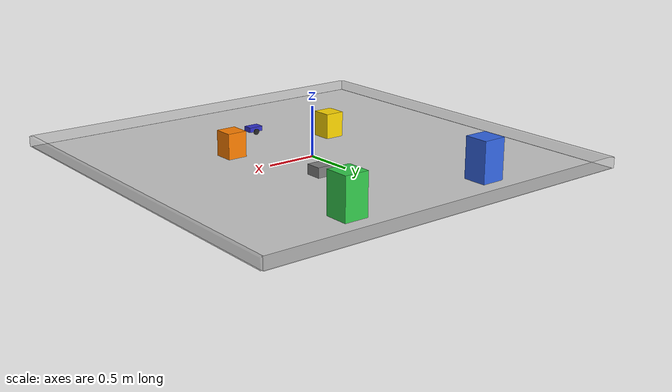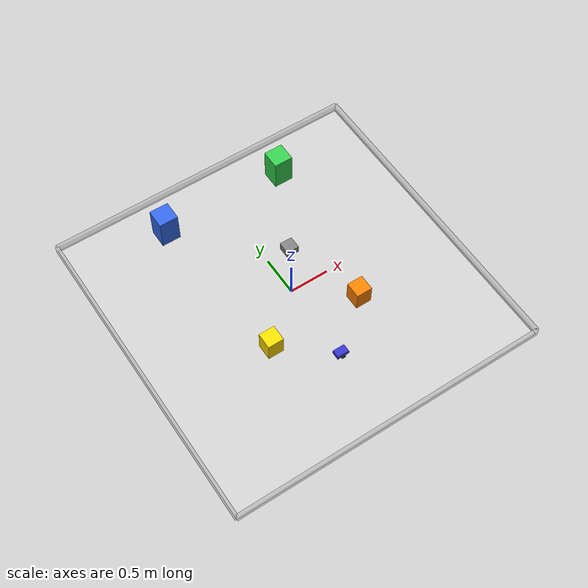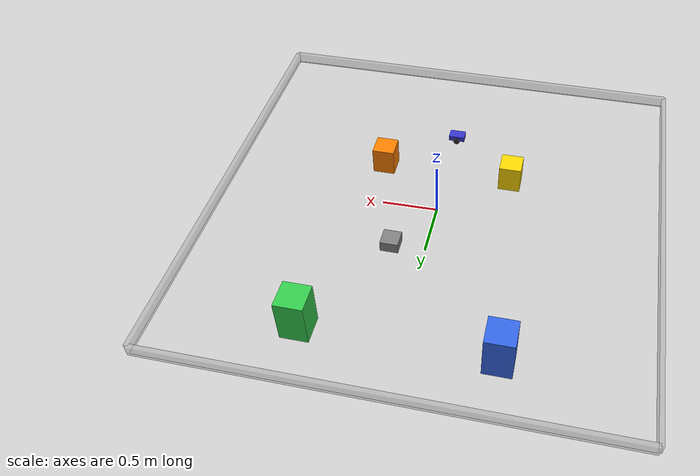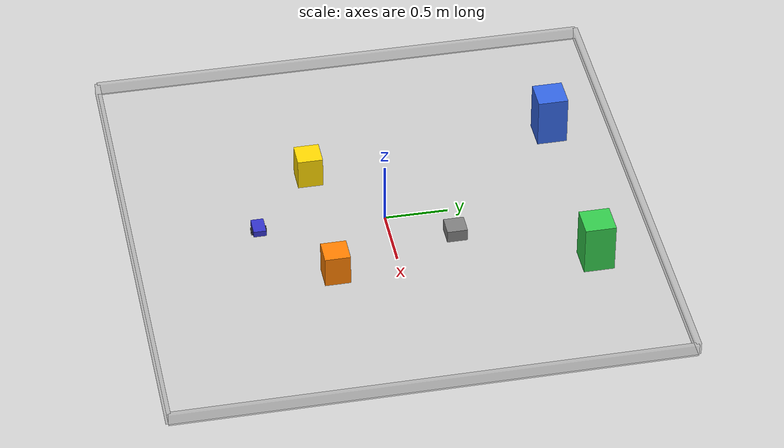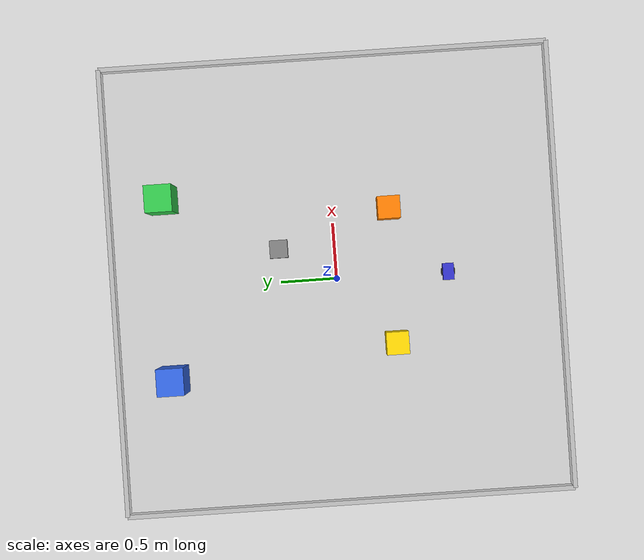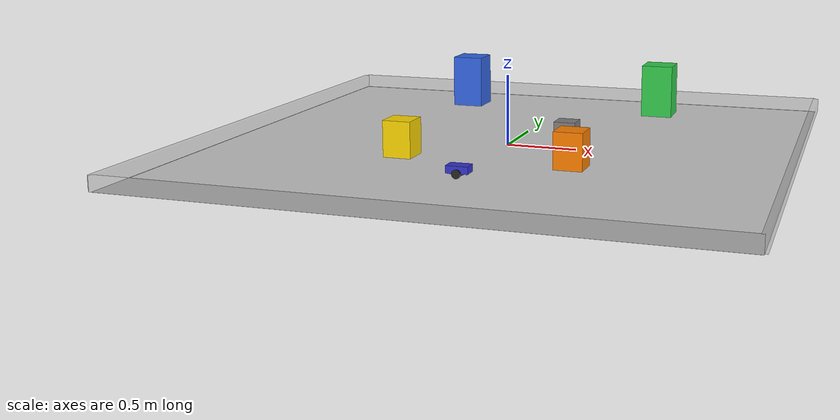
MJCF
<mujoco model="RoClaw_CareAssistant">
  <compiler angle="radian"/>

  <option timestep="0.002" gravity="0 0 -9.81" integrator="implicit"/>

  <default>
    <geom condim="3" friction="1.0 0.005 0.0001"/>
    <joint damping="0.01"/>
  </default>

  <asset>
    <texture name="grid" type="2d" builtin="checker"
             rgb1="0.9 0.9 0.9" rgb2="0.7 0.7 0.7"
             width="512" height="512"/>
    <material name="grid_mat" texture="grid" texrepeat="8 8" texuniform="true"/>
    <material name="chassis_mat" rgba="0.2 0.2 0.8 1"/>
    <material name="wheel_mat" rgba="0.15 0.15 0.15 1"/>
    <material name="caster_mat" rgba="0.6 0.6 0.6 1"/>
    <!-- People: warm colors -->
    <material name="person1_mat" rgba="1.0 0.85 0.0 1"/>
    <material name="person2_mat" rgba="1.0 0.5 0.0 1"/>
    <!-- Doors: cool colors -->
    <material name="blue_door_mat" rgba="0.2 0.4 0.9 1"/>
    <material name="green_door_mat" rgba="0.2 0.8 0.3 1"/>
    <!-- Obstacle -->
    <material name="obstacle_mat" rgba="0.5 0.5 0.5 1"/>
  </asset>

  <visual>
    <headlight ambient="0.3 0.3 0.3" diffuse="0.5 0.5 0.5"/>
  </visual>

  <worldbody>
    <light name="overhead" pos="0 0 1.5" dir="0 0 -1"
           diffuse="0.8 0.8 0.8" specular="0.2 0.2 0.2" directional="true"/>

    <!-- Ground plane -->
    <geom name="floor" type="plane" size="2 2 0.01" material="grid_mat"/>

    <!-- Arena walls -->
    <geom name="wall_north" type="box" pos="0 2 0.05" size="2 0.02 0.05" rgba="0.5 0.5 0.5 0.3"/>
    <geom name="wall_south" type="box" pos="0 -2 0.05" size="2 0.02 0.05" rgba="0.5 0.5 0.5 0.3"/>
    <geom name="wall_east" type="box" pos="2 0 0.05" size="0.02 2 0.05" rgba="0.5 0.5 0.5 0.3"/>
    <geom name="wall_west" type="box" pos="-2 0 0.05" size="0.02 2 0.05" rgba="0.5 0.5 0.5 0.3"/>

    <!-- Person 1: yellow cube (southwest) -->
    <body name="person_1" pos="-0.6 -0.5 0.1">
      <geom type="box" size="0.1 0.1 0.15" material="person1_mat"/>
    </body>

    <!-- Person 2: orange cube (southeast) -->
    <body name="person_2" pos="0.6 -0.5 0.1">
      <geom type="box" size="0.1 0.1 0.15" material="person2_mat"/>
    </body>

    <!-- Blue door: tall blue cube (northwest) -->
    <body name="blue_door" pos="-0.8 1.5 0.15">
      <geom type="box" size="0.12 0.12 0.25" material="blue_door_mat"/>
    </body>

    <!-- Green door: tall green cube (northeast) -->
    <body name="green_door" pos="0.8 1.5 0.15">
      <geom type="box" size="0.12 0.12 0.25" material="green_door_mat"/>
    </body>

    <!-- Small obstacle in the middle -->
    <body name="obstacle" pos="0.3 0.5 0.05">
      <geom type="box" size="0.08 0.08 0.05" material="obstacle_mat"/>
    </body>

    <!-- External overhead camera -->
    <camera name="external_cam" pos="0 0 1.2" xyaxes="1 0 0 0 1 0"
            fovy="90" resolution="640 480"/>

    <!-- ============== RoClaw Robot ============== -->
    <body name="chassis" pos="0 -1.0 0.06">
      <freejoint name="root"/>

      <geom name="chassis_geom" type="box"
            size="0.075 0.05 0.025"
            mass="0.3"
            material="chassis_mat"/>

      <camera name="eyes" pos="0.075 0 0.02" xyaxes="0 -1 0 0 0 1"
              fovy="65" resolution="320 240"/>

      <!-- Left wheel -->
      <body name="left_wheel" pos="0 0.05 -0.025">
        <joint name="left_wheel_joint" type="hinge" axis="0 1 0" damping="0.005"/>
        <geom name="left_wheel_geom" type="cylinder"
              size="0.03 0.01"
              euler="1.5708 0 0"
              mass="0.05"
              material="wheel_mat"
              friction="1.5 0.005 0.0001"/>
      </body>

      <!-- Right wheel -->
      <body name="right_wheel" pos="0 -0.05 -0.025">
        <joint name="right_wheel_joint" type="hinge" axis="0 1 0" damping="0.005"/>
        <geom name="right_wheel_geom" type="cylinder"
              size="0.03 0.01"
              euler="1.5708 0 0"
              mass="0.05"
              material="wheel_mat"
              friction="1.5 0.005 0.0001"/>
      </body>

      <!-- Rear caster ball -->
      <body name="caster" pos="-0.06 0 -0.025">
        <joint name="caster_x" type="hinge" axis="1 0 0" damping="0.001"/>
        <joint name="caster_y" type="hinge" axis="0 1 0" damping="0.001"/>
        <geom name="caster_geom" type="sphere"
              size="0.015"
              mass="0.02"
              material="caster_mat"
              friction="0.05 0.001 0.0001"/>
      </body>
    </body>
  </worldbody>

  <actuator>
    <velocity name="left_wheel" joint="left_wheel_joint"
              ctrlrange="-1.571 1.571" kv="1.0"/>
    <velocity name="right_wheel" joint="right_wheel_joint"
              ctrlrange="-1.571 1.571" kv="1.0"/>
  </actuator>
</mujoco>
